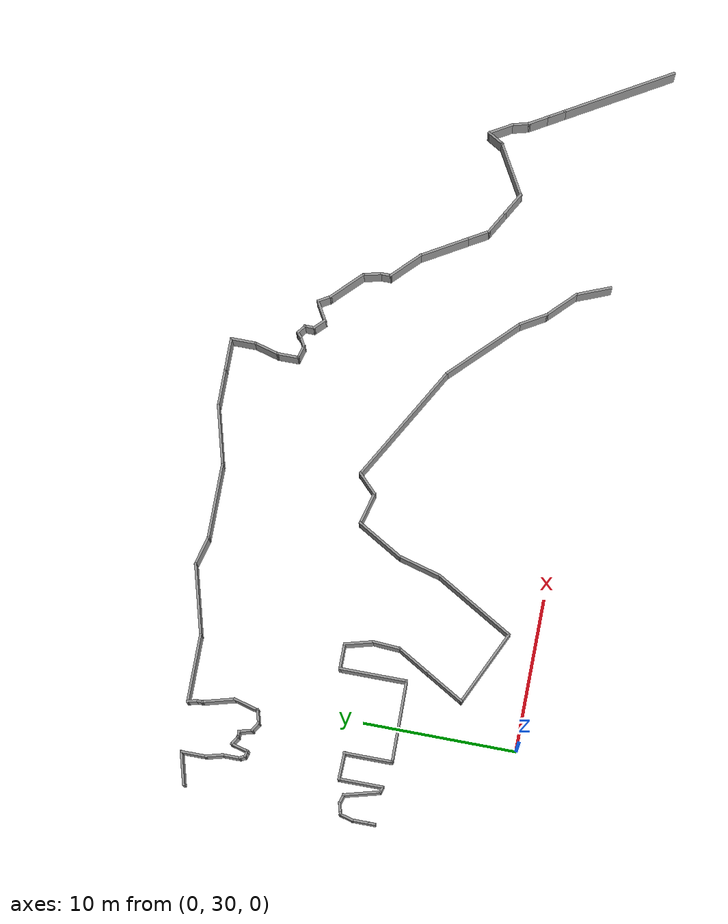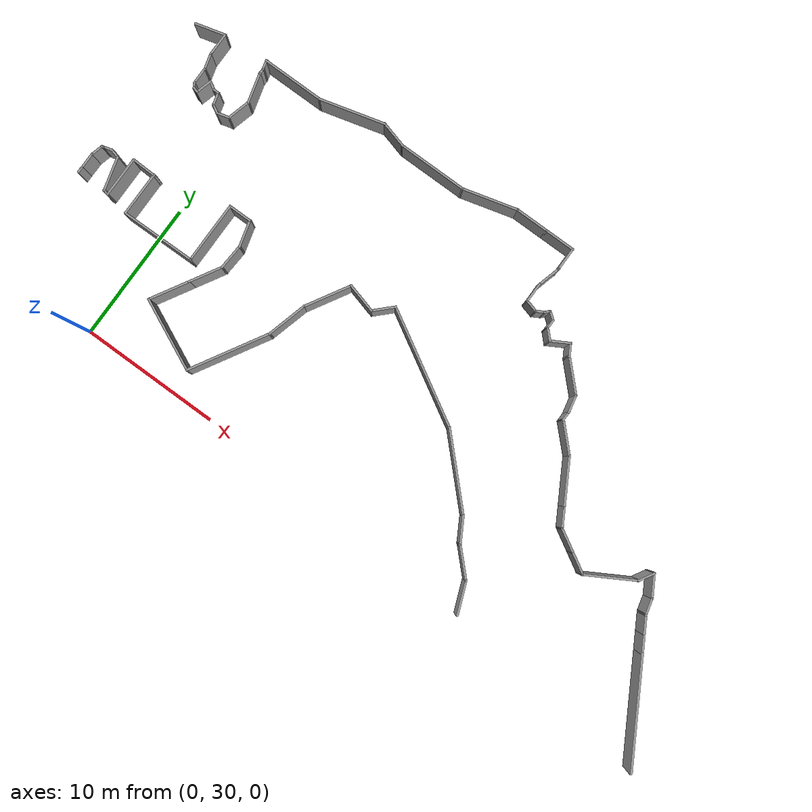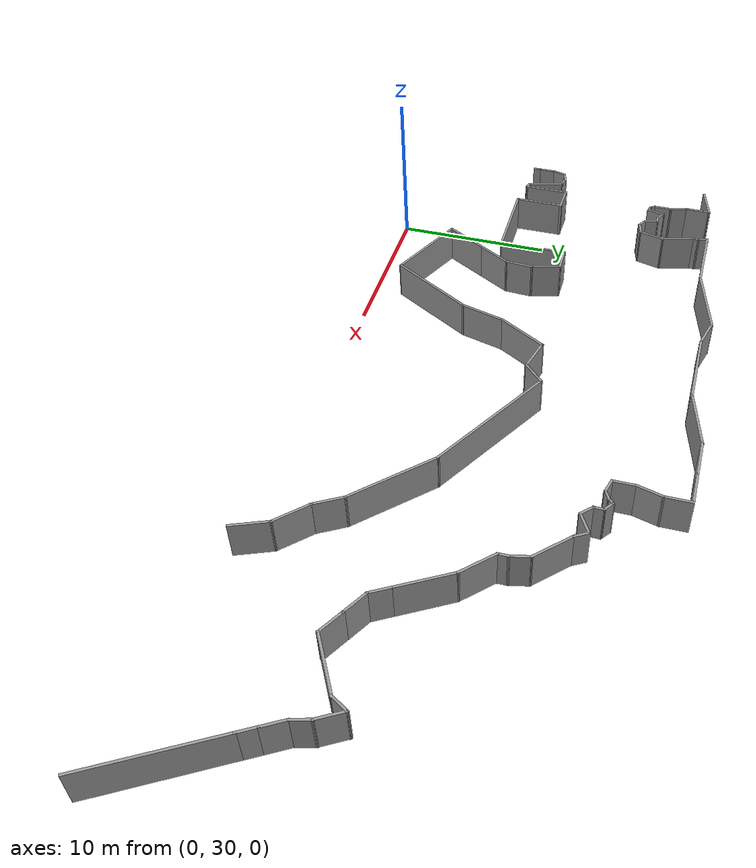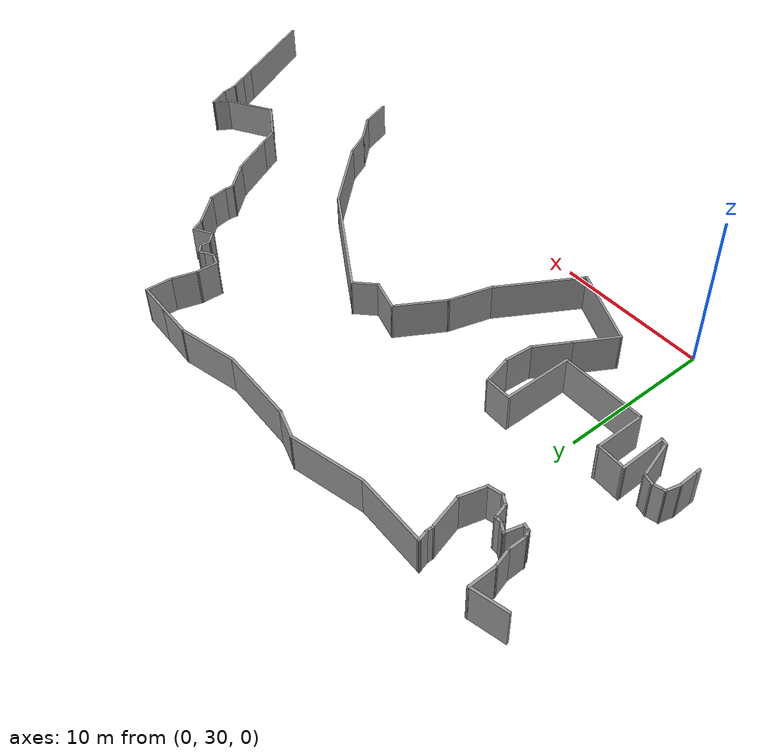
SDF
<sdf version="1.7">
 <model name="office_track1">
  <pose>2.3626 4.43866 0 0 -0 0</pose>
  <link name="Wall_231">
   <collision name="Wall_231_Collision">
    <geometry><box><size>2 0.15 2.5</size></box></geometry>
    <pose>0 0 1.25 0 -0 0</pose>
   </collision>
   <visual name="Wall_231_Visual">
    <pose>0 0 1.25 0 -0 0</pose>
    <geometry><box><size>2 0.15 2.5</size></box></geometry>
    <material>
     <script><uri>file://media/materials/scripts/gazebo.material</uri><name>Gazebo/Grey</name></script>
     <ambient>1 1 1 1</ambient>
    </material>
    <meta><layer>0</layer></meta>
   </visual>
   <pose>25.2408 29.5346 0 0 -0 -1.0472</pose>
  </link>
  <link name="Wall_232">
   <collision name="Wall_232_Collision">
    <geometry><box><size>2.5 0.15 2.5</size></box></geometry>
    <pose>0 0 1.25 0 -0 0</pose>
   </collision>
   <visual name="Wall_232_Visual">
    <pose>0 0 1.25 0 -0 0</pose>
    <geometry><box><size>2.5 0.15 2.5</size></box></geometry>
    <material>
     <script><uri>file://media/materials/scripts/gazebo.material</uri><name>Gazebo/Grey</name></script>
     <ambient>1 1 1 1</ambient>
    </material>
    <meta><layer>0</layer></meta>
   </visual>
   <pose>26.5341 27.9027 0 0 -0 -0.785398</pose>
  </link>
  <link name="Wall_233">
   <collision name="Wall_233_Collision">
    <geometry><box><size>2.40407 0.15 2.5</size></box></geometry>
    <pose>0 0 1.25 0 -0 0</pose>
   </collision>
   <visual name="Wall_233_Visual">
    <pose>0 0 1.25 0 -0 0</pose>
    <geometry><box><size>2.40407 0.15 2.5</size></box></geometry>
    <material>
     <script><uri>file://media/materials/scripts/gazebo.material</uri><name>Gazebo/Grey</name></script>
     <ambient>1 1 1 1</ambient>
    </material>
    <meta><layer>0</layer></meta>
   </visual>
   <pose>27.7843 26.0257 0 0 -0 -1.18961</pose>
  </link>
  <link name="Wall_235">
   <collision name="Wall_235_Collision">
    <geometry><box><size>8.75 0.15 2.5</size></box></geometry>
    <pose>0 0 1.25 0 -0 0</pose>
   </collision>
   <visual name="Wall_235_Visual">
    <pose>0 0 1.25 0 -0 0</pose>
    <geometry><box><size>8.75 0.15 2.5</size></box></geometry>
    <material>
     <script><uri>file://media/materials/scripts/gazebo.material</uri><name>Gazebo/Grey</name></script>
     <ambient>1 1 1 1</ambient>
    </material>
    <meta><layer>0</layer></meta>
   </visual>
   <pose>17.0277 36.5435 0 0 -0 -0.523599</pose>
  </link>
  <link name="Wall_236">
   <collision name="Wall_236_Collision">
    <geometry><box><size>5.86661 0.15 2.5</size></box></geometry>
    <pose>0 0 1.25 0 -0 0</pose>
   </collision>
   <visual name="Wall_236_Visual">
    <pose>0 0 1.25 0 -0 0</pose>
    <geometry><box><size>5.86661 0.15 2.5</size></box></geometry>
    <material>
     <script><uri>file://media/materials/scripts/gazebo.material</uri><name>Gazebo/Grey</name></script>
     <ambient>1 1 1 1</ambient>
    </material>
    <meta><layer>0</layer></meta>
   </visual>
   <pose>22.765 32.3646 0 0 -0 -0.789256</pose>
  </link>
  <link name="Wall_238">
   <collision name="Wall_238_Collision">
    <geometry><box><size>1.75 0.15 2.5</size></box></geometry>
    <pose>0 0 1.25 0 -0 0</pose>
   </collision>
   <visual name="Wall_238_Visual">
    <pose>0 0 1.25 0 -0 0</pose>
    <geometry><box><size>1.75 0.15 2.5</size></box></geometry>
    <material>
     <script><uri>file://media/materials/scripts/gazebo.material</uri><name>Gazebo/Grey</name></script>
     <ambient>1 1 1 1</ambient>
    </material>
    <meta><layer>0</layer></meta>
   </visual>
   <pose>12.7381 38.1278 0 0 -0 -2.35619</pose>
  </link>
  <link name="Wall_239">
   <collision name="Wall_239_Collision">
    <geometry><box><size>2.25 0.15 2.5</size></box></geometry>
    <pose>0 0 1.25 0 -0 0</pose>
   </collision>
   <visual name="Wall_239_Visual">
    <pose>0 0 1.25 0 -0 0</pose>
    <geometry><box><size>2.25 0.15 2.5</size></box></geometry>
    <material>
     <script><uri>file://media/materials/scripts/gazebo.material</uri><name>Gazebo/Grey</name></script>
     <ambient>1 1 1 1</ambient>
    </material>
    <meta><layer>0</layer></meta>
   </visual>
   <pose>11.1582 37.8339 0 0 -0 2.87979</pose>
  </link>
  <link name="Wall_240">
   <collision name="Wall_240_Collision">
    <geometry><box><size>3.5 0.15 2.5</size></box></geometry>
    <pose>0 0 1.25 0 -0 0</pose>
   </collision>
   <visual name="Wall_240_Visual">
    <pose>0 0 1.25 0 -0 0</pose>
    <geometry><box><size>3.5 0.15 2.5</size></box></geometry>
    <material>
     <script><uri>file://media/materials/scripts/gazebo.material</uri><name>Gazebo/Grey</name></script>
     <ambient>1 1 1 1</ambient>
    </material>
    <meta><layer>0</layer></meta>
   </visual>
   <pose>9.30651 36.6551 0 0 -0 -2.0944</pose>
  </link>
  <link name="Wall_241">
   <collision name="Wall_241_Collision">
    <geometry><box><size>3 0.15 2.5</size></box></geometry>
    <pose>0 0 1.25 0 -0 0</pose>
   </collision>
   <visual name="Wall_241_Visual">
    <pose>0 0 1.25 0 -0 0</pose>
    <geometry><box><size>3 0.15 2.5</size></box></geometry>
    <material>
     <script><uri>file://media/materials/scripts/gazebo.material</uri><name>Gazebo/Grey</name></script>
     <ambient>1 1 1 1</ambient>
    </material>
    <meta><layer>0</layer></meta>
   </visual>
   <pose>8.10019 33.828 0 0 -0 -1.8326</pose>
  </link>
  <link name="Wall_242">
   <collision name="Wall_242_Collision">
    <geometry><box><size>6 0.15 2.5</size></box></geometry>
    <pose>0 0 1.25 0 -0 0</pose>
   </collision>
   <visual name="Wall_242_Visual">
    <pose>0 0 1.25 0 -0 0</pose>
    <geometry><box><size>6 0.15 2.5</size></box></geometry>
    <material>
     <script><uri>file://media/materials/scripts/gazebo.material</uri><name>Gazebo/Grey</name></script>
     <ambient>1 1 1 1</ambient>
    </material>
    <meta><layer>0</layer></meta>
   </visual>
   <pose>6.26888 29.9185 0 0 -0 -2.0944</pose>
  </link>
  <link name="Wall_244">
   <collision name="Wall_244_Collision">
    <geometry><box><size>2.5 0.15 2.5</size></box></geometry>
    <pose>0 0 1.25 0 -0 0</pose>
   </collision>
   <visual name="Wall_244_Visual">
    <pose>0 0 1.25 0 -0 0</pose>
    <geometry><box><size>2.5 0.15 2.5</size></box></geometry>
    <material>
     <script><uri>file://media/materials/scripts/gazebo.material</uri><name>Gazebo/Grey</name></script>
     <ambient>1 1 1 1</ambient>
    </material>
    <meta><layer>0</layer></meta>
   </visual>
   <pose>2.04965 33.1007 0 0 -0 -2.0944</pose>
  </link>
  <link name="Wall_245">
   <collision name="Wall_245_Collision">
    <geometry><box><size>3 0.15 2.5</size></box></geometry>
    <pose>0 0 1.25 0 -0 0</pose>
   </collision>
   <visual name="Wall_245_Visual">
    <pose>0 0 1.25 0 -0 0</pose>
    <geometry><box><size>3 0.15 2.5</size></box></geometry>
    <material>
     <script><uri>file://media/materials/scripts/gazebo.material</uri><name>Gazebo/Grey</name></script>
     <ambient>1 1 1 1</ambient>
    </material>
    <meta><layer>0</layer></meta>
   </visual>
   <pose>0.749647 30.849 0 0 -0 -2.0944</pose>
  </link>
  <link name="Wall_246">
   <collision name="Wall_246_Collision">
    <geometry><box><size>5.41467 0.15 2.5</size></box></geometry>
    <pose>0 0 1.25 0 -0 0</pose>
   </collision>
   <visual name="Wall_246_Visual">
    <pose>0 0 1.25 0 -0 0</pose>
    <geometry><box><size>5.41467 0.15 2.5</size></box></geometry>
    <material>
     <script><uri>file://media/materials/scripts/gazebo.material</uri><name>Gazebo/Grey</name></script>
     <ambient>1 1 1 1</ambient>
    </material>
    <meta><layer>0</layer></meta>
   </visual>
   <pose>2.42176 28.5001 0 0 -0 -0.43731</pose>
  </link>
  <link name="Wall_248">
   <collision name="Wall_248_Collision">
    <geometry><box><size>1.75 0.15 2.5</size></box></geometry>
    <pose>0 0 1.25 0 -0 0</pose>
   </collision>
   <visual name="Wall_248_Visual">
    <pose>0 0 1.25 0 -0 0</pose>
    <geometry><box><size>1.75 0.15 2.5</size></box></geometry>
    <material>
     <script><uri>file://media/materials/scripts/gazebo.material</uri><name>Gazebo/Grey</name></script>
     <ambient>1 1 1 1</ambient>
    </material>
    <meta><layer>0</layer></meta>
   </visual>
   <pose>1.46873 37.6561 0 0 -0 0</pose>
  </link>
  <link name="Wall_249">
   <collision name="Wall_249_Collision">
    <geometry><box><size>2 0.15 2.5</size></box></geometry>
    <pose>0 0 1.25 0 -0 0</pose>
   </collision>
   <visual name="Wall_249_Visual">
    <pose>0 0 1.25 0 -0 0</pose>
    <geometry><box><size>2 0.15 2.5</size></box></geometry>
    <material>
     <script><uri>file://media/materials/scripts/gazebo.material</uri><name>Gazebo/Grey</name></script>
     <ambient>1 1 1 1</ambient>
    </material>
    <meta><layer>0</layer></meta>
   </visual>
   <pose>2.50814 36.7626 0 0 -0 -1.309</pose>
  </link>
  <link name="Wall_250">
   <collision name="Wall_250_Collision">
    <geometry><box><size>1.90434 0.15 2.5</size></box></geometry>
    <pose>0 0 1.25 0 -0 0</pose>
   </collision>
   <visual name="Wall_250_Visual">
    <pose>0 0 1.25 0 -0 0</pose>
    <geometry><box><size>1.90434 0.15 2.5</size></box></geometry>
    <material>
     <script><uri>file://media/materials/scripts/gazebo.material</uri><name>Gazebo/Grey</name></script>
     <ambient>1 1 1 1</ambient>
    </material>
    <meta><layer>0</layer></meta>
   </visual>
   <pose>2.69235 34.9937 0 0 -0 -1.63377</pose>
  </link>
  <link name="Wall_252">
   <collision name="Wall_252_Collision">
    <geometry><box><size>4.5 0.15 2.5</size></box></geometry>
    <pose>0 0 1.25 0 -0 0</pose>
   </collision>
   <visual name="Wall_252_Visual">
    <pose>0 0 1.25 0 -0 0</pose>
    <geometry><box><size>4.5 0.15 2.5</size></box></geometry>
    <material>
     <script><uri>file://media/materials/scripts/gazebo.material</uri><name>Gazebo/Grey</name></script>
     <ambient>1 1 1 1</ambient>
    </material>
    <meta><layer>0</layer></meta>
   </visual>
   <pose>0.668732 35.4811 0 0 -0 -1.5708</pose>
  </link>
  <link name="Wall_253">
   <collision name="Wall_253_Collision">
    <geometry><box><size>5.38327 0.15 2.5</size></box></geometry>
    <pose>0 0 1.25 0 -0 0</pose>
   </collision>
   <visual name="Wall_253_Visual">
    <pose>0 0 1.25 0 -0 0</pose>
    <geometry><box><size>5.38327 0.15 2.5</size></box></geometry>
    <material>
     <script><uri>file://media/materials/scripts/gazebo.material</uri><name>Gazebo/Grey</name></script>
     <ambient>1 1 1 1</ambient>
    </material>
    <meta><layer>0</layer></meta>
   </visual>
   <pose>-1.94777 33.2795 0 0 -0 -3.13143</pose>
  </link>
  <link name="Wall_254">
   <collision name="Wall_254_Collision">
    <geometry><box><size>3.25 0.15 2.5</size></box></geometry>
    <pose>0 0 1.25 0 -0 0</pose>
   </collision>
   <visual name="Wall_254_Visual">
    <pose>0 0 1.25 0 -0 0</pose>
    <geometry><box><size>3.25 0.15 2.5</size></box></geometry>
    <material>
     <script><uri>file://media/materials/scripts/gazebo.material</uri><name>Gazebo/Grey</name></script>
     <ambient>1 1 1 1</ambient>
    </material>
    <meta><layer>0</layer></meta>
   </visual>
   <pose>-4.59087 34.8295 0 0 -0 1.5708</pose>
  </link>
  <link name="Wall_255">
   <collision name="Wall_255_Collision">
    <geometry><box><size>1.86782 0.15 2.5</size></box></geometry>
    <pose>0 0 1.25 0 -0 0</pose>
   </collision>
   <visual name="Wall_255_Visual">
    <pose>0 0 1.25 0 -0 0</pose>
    <geometry><box><size>1.86782 0.15 2.5</size></box></geometry>
    <material>
     <script><uri>file://media/materials/scripts/gazebo.material</uri><name>Gazebo/Grey</name></script>
     <ambient>1 1 1 1</ambient>
    </material>
    <meta><layer>0</layer></meta>
   </visual>
   <pose>-5.42277 36.3795 0 0 -0 3.11062</pose>
  </link>
  <link name="Wall_256">
   <collision name="Wall_256_Collision">
    <geometry><box><size>3 0.15 2.5</size></box></geometry>
    <pose>0 0 1.25 0 -0 0</pose>
   </collision>
   <visual name="Wall_256_Visual">
    <pose>0 0 1.25 0 -0 0</pose>
    <geometry><box><size>3 0.15 2.5</size></box></geometry>
    <material>
     <script><uri>file://media/materials/scripts/gazebo.material</uri><name>Gazebo/Grey</name></script>
     <ambient>1 1 1 1</ambient>
    </material>
    <meta><layer>0</layer></meta>
   </visual>
   <pose>-6.28127 34.9811 0 0 -0 -1.5708</pose>
  </link>
  <link name="Wall_257">
   <collision name="Wall_257_Collision">
    <geometry><box><size>0.5 0.15 2.5</size></box></geometry>
    <pose>0 0 1.25 0 -0 0</pose>
   </collision>
   <visual name="Wall_257_Visual">
    <pose>0 0 1.25 0 -0 0</pose>
    <geometry><box><size>0.5 0.15 2.5</size></box></geometry>
    <material>
     <script><uri>file://media/materials/scripts/gazebo.material</uri><name>Gazebo/Grey</name></script>
     <ambient>1 1 1 1</ambient>
    </material>
    <meta><layer>0</layer></meta>
   </visual>
   <pose>-6.45031 33.6014 0 0 -0 2.87979</pose>
  </link>
  <link name="Wall_258">
   <collision name="Wall_258_Collision">
    <geometry><box><size>2.5 0.15 2.5</size></box></geometry>
    <pose>0 0 1.25 0 -0 0</pose>
   </collision>
   <visual name="Wall_258_Visual">
    <pose>0 0 1.25 0 -0 0</pose>
    <geometry><box><size>2.5 0.15 2.5</size></box></geometry>
    <material>
     <script><uri>file://media/materials/scripts/gazebo.material</uri><name>Gazebo/Grey</name></script>
     <ambient>1 1 1 1</ambient>
    </material>
    <meta><layer>0</layer></meta>
   </visual>
   <pose>-6.92345 34.7817 0 0 -0 1.8326</pose>
  </link>
  <link name="Wall_259">
   <collision name="Wall_259_Collision">
    <geometry><box><size>0.75 0.15 2.5</size></box></geometry>
    <pose>0 0 1.25 0 -0 0</pose>
   </collision>
   <visual name="Wall_259_Visual">
    <pose>0 0 1.25 0 -0 0</pose>
    <geometry><box><size>0.75 0.15 2.5</size></box></geometry>
    <material>
     <script><uri>file://media/materials/scripts/gazebo.material</uri><name>Gazebo/Grey</name></script>
     <ambient>1 1 1 1</ambient>
    </material>
    <meta><layer>0</layer></meta>
   </visual>
   <pose>-7.51734 35.9943 0 0 -0 2.87979</pose>
  </link>
  <link name="Wall_260">
   <collision name="Wall_260_Collision">
    <geometry><box><size>0.75 0.15 2.5</size></box></geometry>
    <pose>0 0 1.25 0 -0 0</pose>
   </collision>
   <visual name="Wall_260_Visual">
    <pose>0 0 1.25 0 -0 0</pose>
    <geometry><box><size>0.75 0.15 2.5</size></box></geometry>
    <material>
     <script><uri>file://media/materials/scripts/gazebo.material</uri><name>Gazebo/Grey</name></script>
     <ambient>1 1 1 1</ambient>
    </material>
    <meta><layer>0</layer></meta>
   </visual>
   <pose>-8.0969 35.9943 0 0 -0 -2.87979</pose>
  </link>
  <link name="Wall_261">
   <collision name="Wall_261_Collision">
    <geometry><box><size>0.25 0.15 2.5</size></box></geometry>
    <pose>0 0 1.25 0 -0 0</pose>
   </collision>
   <visual name="Wall_261_Visual">
    <pose>0 0 1.25 0 -0 0</pose>
    <geometry><box><size>0.25 0.15 2.5</size></box></geometry>
    <material>
     <script><uri>file://media/materials/scripts/gazebo.material</uri><name>Gazebo/Grey</name></script>
     <ambient>1 1 1 1</ambient>
    </material>
    <meta><layer>0</layer></meta>
   </visual>
   <pose>-8.43497 35.9037 0 0 -0 -2.87979</pose>
  </link>
  <link name="Wall_262">
   <collision name="Wall_262_Collision">
    <geometry><box><size>1 0.15 2.5</size></box></geometry>
    <pose>0 0 1.25 0 -0 0</pose>
   </collision>
   <visual name="Wall_262_Visual">
    <pose>0 0 1.25 0 -0 0</pose>
    <geometry><box><size>1 0.15 2.5</size></box></geometry>
    <material>
     <script><uri>file://media/materials/scripts/gazebo.material</uri><name>Gazebo/Grey</name></script>
     <ambient>1 1 1 1</ambient>
    </material>
    <meta><layer>0</layer></meta>
   </visual>
   <pose>-8.59327 35.4802 0 0 -0 -1.8326</pose>
  </link>
  <link name="Wall_263">
   <collision name="Wall_263_Collision">
    <geometry><box><size>1.25 0.15 2.5</size></box></geometry>
    <pose>0 0 1.25 0 -0 0</pose>
   </collision>
   <visual name="Wall_263_Visual">
    <pose>0 0 1.25 0 -0 0</pose>
    <geometry><box><size>1.25 0.15 2.5</size></box></geometry>
    <material>
     <script><uri>file://media/materials/scripts/gazebo.material</uri><name>Gazebo/Grey</name></script>
     <ambient>1 1 1 1</ambient>
    </material>
    <meta><layer>0</layer></meta>
   </visual>
   <pose>-8.70327 34.5197 0 0 -0 -1.5708</pose>
  </link>
  <link name="Wall_264">
   <collision name="Wall_264_Collision">
    <geometry><box><size>0.5 0.15 2.5</size></box></geometry>
    <pose>0 0 1.25 0 -0 0</pose>
   </collision>
   <visual name="Wall_264_Visual">
    <pose>0 0 1.25 0 -0 0</pose>
    <geometry><box><size>0.5 0.15 2.5</size></box></geometry>
    <material>
     <script><uri>file://media/materials/scripts/gazebo.material</uri><name>Gazebo/Grey</name></script>
     <ambient>1 1 1 1</ambient>
    </material>
    <meta><layer>0</layer></meta>
   </visual>
   <pose>-8.70327 33.7947 0 0 -0 -1.5708</pose>
  </link>
  <link name="Wall_301">
   <collision name="Wall_301_Collision">
    <geometry><box><size>1.5 0.15 2.5</size></box></geometry>
    <pose>0 0 1.25 0 -0 0</pose>
   </collision>
   <visual name="Wall_301_Visual">
    <pose>0 0 1.25 0 -0 0</pose>
    <geometry><box><size>1.5 0.15 2.5</size></box></geometry>
    <material>
     <script><uri>file://media/materials/scripts/gazebo.material</uri><name>Gazebo/Grey</name></script>
     <ambient>1 1 1 1</ambient>
    </material>
    <meta><layer>0</layer></meta>
   </visual>
   <pose>30.0571 34.013 0 0 -0 -1.0472</pose>
  </link>
  <link name="Wall_302">
   <collision name="Wall_302_Collision">
    <geometry><box><size>1.75 0.15 2.5</size></box></geometry>
    <pose>0 0 1.25 0 -0 0</pose>
   </collision>
   <visual name="Wall_302_Visual">
    <pose>0 0 1.25 0 -0 0</pose>
    <geometry><box><size>1.75 0.15 2.5</size></box></geometry>
    <material>
     <script><uri>file://media/materials/scripts/gazebo.material</uri><name>Gazebo/Grey</name></script>
     <ambient>1 1 1 1</ambient>
    </material>
    <meta><layer>0</layer></meta>
   </visual>
   <pose>31.0874 33.0285 0 0 -0 -0.523599</pose>
  </link>
  <link name="Wall_303">
   <collision name="Wall_303_Collision">
    <geometry><box><size>1.75 0.15 2.5</size></box></geometry>
    <pose>0 0 1.25 0 -0 0</pose>
   </collision>
   <visual name="Wall_303_Visual">
    <pose>0 0 1.25 0 -0 0</pose>
    <geometry><box><size>1.75 0.15 2.5</size></box></geometry>
    <material>
     <script><uri>file://media/materials/scripts/gazebo.material</uri><name>Gazebo/Grey</name></script>
     <ambient>1 1 1 1</ambient>
    </material>
    <meta><layer>0</layer></meta>
   </visual>
   <pose>32.4731 32.2285 0 0 -0 -0.523599</pose>
  </link>
  <link name="Wall_304">
   <collision name="Wall_304_Collision">
    <geometry><box><size>3.75 0.15 2.5</size></box></geometry>
    <pose>0 0 1.25 0 -0 0</pose>
   </collision>
   <visual name="Wall_304_Visual">
    <pose>0 0 1.25 0 -0 0</pose>
    <geometry><box><size>3.75 0.15 2.5</size></box></geometry>
    <material>
     <script><uri>file://media/materials/scripts/gazebo.material</uri><name>Gazebo/Grey</name></script>
     <ambient>1 1 1 1</ambient>
    </material>
    <meta><layer>0</layer></meta>
   </visual>
   <pose>34.7247 32.7285 0 0 -0 0.523599</pose>
  </link>
  <link name="Wall_305">
   <collision name="Wall_305_Collision">
    <geometry><box><size>1.25 0.15 2.5</size></box></geometry>
    <pose>0 0 1.25 0 -0 0</pose>
   </collision>
   <visual name="Wall_305_Visual">
    <pose>0 0 1.25 0 -0 0</pose>
    <geometry><box><size>1.25 0.15 2.5</size></box></geometry>
    <material>
     <script><uri>file://media/materials/scripts/gazebo.material</uri><name>Gazebo/Grey</name></script>
     <ambient>1 1 1 1</ambient>
    </material>
    <meta><layer>0</layer></meta>
   </visual>
   <pose>36.5586 34.1048 0 0 -0 1.0472</pose>
  </link>
  <link name="Wall_306">
   <collision name="Wall_306_Collision">
    <geometry><box><size>1.75 0.15 2.5</size></box></geometry>
    <pose>0 0 1.25 0 -0 0</pose>
   </collision>
   <visual name="Wall_306_Visual">
    <pose>0 0 1.25 0 -0 0</pose>
    <geometry><box><size>1.75 0.15 2.5</size></box></geometry>
    <material>
     <script><uri>file://media/materials/scripts/gazebo.material</uri><name>Gazebo/Grey</name></script>
     <ambient>1 1 1 1</ambient>
    </material>
    <meta><layer>0</layer></meta>
   </visual>
   <pose>37.2336 33.8883 0 0 -0 -1.0472</pose>
  </link>
  <link name="Wall_307">
   <collision name="Wall_307_Collision">
    <geometry><box><size>1.25 0.15 2.5</size></box></geometry>
    <pose>0 0 1.25 0 -0 0</pose>
   </collision>
   <visual name="Wall_307_Visual">
    <pose>0 0 1.25 0 -0 0</pose>
    <geometry><box><size>1.25 0.15 2.5</size></box></geometry>
    <material>
     <script><uri>file://media/materials/scripts/gazebo.material</uri><name>Gazebo/Grey</name></script>
     <ambient>1 1 1 1</ambient>
    </material>
    <meta><layer>0</layer></meta>
   </visual>
   <pose>37.7759 32.6642 0 0 -0 -1.309</pose>
  </link>
  <link name="Wall_308">
   <collision name="Wall_308_Collision">
    <geometry><box><size>1.5 0.15 2.5</size></box></geometry>
    <pose>0 0 1.25 0 -0 0</pose>
   </collision>
   <visual name="Wall_308_Visual">
    <pose>0 0 1.25 0 -0 0</pose>
    <geometry><box><size>1.5 0.15 2.5</size></box></geometry>
    <material>
     <script><uri>file://media/materials/scripts/gazebo.material</uri><name>Gazebo/Grey</name></script>
     <ambient>1 1 1 1</ambient>
    </material>
    <meta><layer>0</layer></meta>
   </visual>
   <pose>38.2558 31.5484 0 0 -0 -1.0472</pose>
  </link>
  <link name="Wall_309">
   <collision name="Wall_309_Collision">
    <geometry><box><size>1.25 0.15 2.5</size></box></geometry>
    <pose>0 0 1.25 0 -0 0</pose>
   </collision>
   <visual name="Wall_309_Visual">
    <pose>0 0 1.25 0 -0 0</pose>
    <geometry><box><size>1.25 0.15 2.5</size></box></geometry>
    <material>
     <script><uri>file://media/materials/scripts/gazebo.material</uri><name>Gazebo/Grey</name></script>
     <ambient>1 1 1 1</ambient>
    </material>
    <meta><layer>0</layer></meta>
   </visual>
   <pose>38.8683 30.4875 0 0 -0 -1.0472</pose>
  </link>
  <link name="Wall_311">
   <collision name="Wall_311_Collision">
    <geometry><box><size>3.5 0.15 2.5</size></box></geometry>
    <pose>0 0 1.25 0 -0 0</pose>
   </collision>
   <visual name="Wall_311_Visual">
    <pose>0 0 1.25 0 -0 0</pose>
    <geometry><box><size>3.5 0.15 2.5</size></box></geometry>
    <material>
     <script><uri>file://media/materials/scripts/gazebo.material</uri><name>Gazebo/Grey</name></script>
     <ambient>1 1 1 1</ambient>
    </material>
    <meta><layer>0</layer></meta>
   </visual>
   <pose>28.8821 36.0482 0 0 -0 2.0944</pose>
  </link>
  <link name="Wall_312">
   <collision name="Wall_312_Collision">
    <geometry><box><size>2.5 0.15 2.5</size></box></geometry>
    <pose>0 0 1.25 0 -0 0</pose>
   </collision>
   <visual name="Wall_312_Visual">
    <pose>0 0 1.25 0 -0 0</pose>
    <geometry><box><size>2.5 0.15 2.5</size></box></geometry>
    <material>
     <script><uri>file://media/materials/scripts/gazebo.material</uri><name>Gazebo/Grey</name></script>
     <ambient>1 1 1 1</ambient>
    </material>
    <meta><layer>0</layer></meta>
   </visual>
   <pose>27.2137 38.3296 0 0 -0 2.35619</pose>
  </link>
  <link name="Wall_313">
   <collision name="Wall_313_Collision">
    <geometry><box><size>0.75 0.15 2.5</size></box></geometry>
    <pose>0 0 1.25 0 -0 0</pose>
   </collision>
   <visual name="Wall_313_Visual">
    <pose>0 0 1.25 0 -0 0</pose>
    <geometry><box><size>0.75 0.15 2.5</size></box></geometry>
    <material>
     <script><uri>file://media/materials/scripts/gazebo.material</uri><name>Gazebo/Grey</name></script>
     <ambient>1 1 1 1</ambient>
    </material>
    <meta><layer>0</layer></meta>
   </visual>
   <pose>26.3829 39.4605 0 0 -0 1.5708</pose>
  </link>
  <link name="Wall_315">
   <collision name="Wall_315_Collision">
    <geometry><box><size>7.75 0.15 2.5</size></box></geometry>
    <pose>0 0 1.25 0 -0 0</pose>
   </collision>
   <visual name="Wall_315_Visual">
    <pose>0 0 1.25 0 -0 0</pose>
    <geometry><box><size>7.75 0.15 2.5</size></box></geometry>
    <material>
     <script><uri>file://media/materials/scripts/gazebo.material</uri><name>Gazebo/Grey</name></script>
     <ambient>1 1 1 1</ambient>
    </material>
    <meta><layer>0</layer></meta>
   </visual>
   <pose>41.0433 26.7203 0 0 -0 -1.0472</pose>
  </link>
  <link name="Wall_664">
   <collision name="Wall_664_Collision">
    <geometry><box><size>2.25 0.15 2.5</size></box></geometry>
    <pose>0 0 1.25 0 -0 0</pose>
   </collision>
   <visual name="Wall_664_Visual">
    <pose>0 0 1.25 0 -0 0</pose>
    <geometry><box><size>2.25 0.15 2.5</size></box></geometry>
    <material>
     <script><uri>file://media/materials/scripts/gazebo.material</uri><name>Gazebo/Grey</name></script>
     <ambient>1 1 1 1</ambient>
    </material>
    <meta><layer>0</layer></meta>
   </visual>
   <pose>-7.43792 46.3689 0 0 -0 0.261799</pose>
  </link>
  <link name="Wall_665">
   <collision name="Wall_665_Collision">
    <geometry><box><size>1.75 0.15 2.5</size></box></geometry>
    <pose>0 0 1.25 0 -0 0</pose>
   </collision>
   <visual name="Wall_665_Visual">
    <pose>0 0 1.25 0 -0 0</pose>
    <geometry><box><size>1.75 0.15 2.5</size></box></geometry>
    <material>
     <script><uri>file://media/materials/scripts/gazebo.material</uri><name>Gazebo/Grey</name></script>
     <ambient>1 1 1 1</ambient>
    </material>
    <meta><layer>0</layer></meta>
   </visual>
   <pose>-6.4237 45.8407 0 0 -0 -1.5708</pose>
  </link>
  <link name="Wall_666">
   <collision name="Wall_666_Collision">
    <geometry><box><size>1.25 0.15 2.5</size></box></geometry>
    <pose>0 0 1.25 0 -0 0</pose>
   </collision>
   <visual name="Wall_666_Visual">
    <pose>0 0 1.25 0 -0 0</pose>
    <geometry><box><size>1.25 0.15 2.5</size></box></geometry>
    <material>
     <script><uri>file://media/materials/scripts/gazebo.material</uri><name>Gazebo/Grey</name></script>
     <ambient>1 1 1 1</ambient>
    </material>
    <meta><layer>0</layer></meta>
   </visual>
   <pose>-6.28135 44.5094 0 0 -0 -1.309</pose>
  </link>
  <link name="Wall_667">
   <collision name="Wall_667_Collision">
    <geometry><box><size>1.25 0.15 2.5</size></box></geometry>
    <pose>0 0 1.25 0 -0 0</pose>
   </collision>
   <visual name="Wall_667_Visual">
    <pose>0 0 1.25 0 -0 0</pose>
    <geometry><box><size>1.25 0.15 2.5</size></box></geometry>
    <material>
     <script><uri>file://media/materials/scripts/gazebo.material</uri><name>Gazebo/Grey</name></script>
     <ambient>1 1 1 1</ambient>
    </material>
    <meta><layer>0</layer></meta>
   </visual>
   <pose>-6.139 43.4282 0 0 -0 -1.5708</pose>
  </link>
  <link name="Wall_668">
   <collision name="Wall_668_Collision">
    <geometry><box><size>0.5 0.15 2.5</size></box></geometry>
    <pose>0 0 1.25 0 -0 0</pose>
   </collision>
   <visual name="Wall_668_Visual">
    <pose>0 0 1.25 0 -0 0</pose>
    <geometry><box><size>0.5 0.15 2.5</size></box></geometry>
    <material>
     <script><uri>file://media/materials/scripts/gazebo.material</uri><name>Gazebo/Grey</name></script>
     <ambient>1 1 1 1</ambient>
    </material>
    <meta><layer>0</layer></meta>
   </visual>
   <pose>-6.0515 42.7266 0 0 -0 -1.0472</pose>
  </link>
  <link name="Wall_669">
   <collision name="Wall_669_Collision">
    <geometry><box><size>0.5 0.15 2.5</size></box></geometry>
    <pose>0 0 1.25 0 -0 0</pose>
   </collision>
   <visual name="Wall_669_Visual">
    <pose>0 0 1.25 0 -0 0</pose>
    <geometry><box><size>0.5 0.15 2.5</size></box></geometry>
    <material>
     <script><uri>file://media/materials/scripts/gazebo.material</uri><name>Gazebo/Grey</name></script>
     <ambient>1 1 1 1</ambient>
    </material>
    <meta><layer>0</layer></meta>
   </visual>
   <pose>-5.79496 42.5298 0 0 -0 -0.261799</pose>
  </link>
  <link name="Wall_670">
   <collision name="Wall_670_Collision">
    <geometry><box><size>1.25 0.15 2.5</size></box></geometry>
    <pose>0 0 1.25 0 -0 0</pose>
   </collision>
   <visual name="Wall_670_Visual">
    <pose>0 0 1.25 0 -0 0</pose>
    <geometry><box><size>1.25 0.15 2.5</size></box></geometry>
    <material>
     <script><uri>file://media/materials/scripts/gazebo.material</uri><name>Gazebo/Grey</name></script>
     <ambient>1 1 1 1</ambient>
    </material>
    <meta><layer>0</layer></meta>
   </visual>
   <pose>-5.48357 43.0157 0 0 -0 1.309</pose>
  </link>
  <link name="Wall_671">
   <collision name="Wall_671_Collision">
    <geometry><box><size>0.75 0.15 2.5</size></box></geometry>
    <pose>0 0 1.25 0 -0 0</pose>
   </collision>
   <visual name="Wall_671_Visual">
    <pose>0 0 1.25 0 -0 0</pose>
    <geometry><box><size>0.75 0.15 2.5</size></box></geometry>
    <material>
     <script><uri>file://media/materials/scripts/gazebo.material</uri><name>Gazebo/Grey</name></script>
     <ambient>1 1 1 1</ambient>
    </material>
    <meta><layer>0</layer></meta>
   </visual>
   <pose>-5.08141 43.397 0 0 -0 -0.523599</pose>
  </link>
  <link name="Wall_672">
   <collision name="Wall_672_Collision">
    <geometry><box><size>0.5 0.15 2.5</size></box></geometry>
    <pose>0 0 1.25 0 -0 0</pose>
   </collision>
   <visual name="Wall_672_Visual">
    <pose>0 0 1.25 0 -0 0</pose>
    <geometry><box><size>0.5 0.15 2.5</size></box></geometry>
    <material>
     <script><uri>file://media/materials/scripts/gazebo.material</uri><name>Gazebo/Grey</name></script>
     <ambient>1 1 1 1</ambient>
    </material>
    <meta><layer>0</layer></meta>
   </visual>
   <pose>-4.64661 43.247 0 0 -0 0</pose>
  </link>
  <link name="Wall_673">
   <collision name="Wall_673_Collision">
    <geometry><box><size>1 0.15 2.5</size></box></geometry>
    <pose>0 0 1.25 0 -0 0</pose>
   </collision>
   <visual name="Wall_673_Visual">
    <pose>0 0 1.25 0 -0 0</pose>
    <geometry><box><size>1 0.15 2.5</size></box></geometry>
    <material>
     <script><uri>file://media/materials/scripts/gazebo.material</uri><name>Gazebo/Grey</name></script>
     <ambient>1 1 1 1</ambient>
    </material>
    <meta><layer>0</layer></meta>
   </visual>
   <pose>-4.36161 42.8365 0 0 -0 -1.309</pose>
  </link>
  <link name="Wall_674">
   <collision name="Wall_674_Collision">
    <geometry><box><size>0.75 0.15 2.5</size></box></geometry>
    <pose>0 0 1.25 0 -0 0</pose>
   </collision>
   <visual name="Wall_674_Visual">
    <pose>0 0 1.25 0 -0 0</pose>
    <geometry><box><size>0.75 0.15 2.5</size></box></geometry>
    <material>
     <script><uri>file://media/materials/scripts/gazebo.material</uri><name>Gazebo/Grey</name></script>
     <ambient>1 1 1 1</ambient>
    </material>
    <meta><layer>0</layer></meta>
   </visual>
   <pose>-3.9918 42.2759 0 0 -0 -0.523599</pose>
  </link>
  <link name="Wall_675">
   <collision name="Wall_675_Collision">
    <geometry><box><size>1 0.15 2.5</size></box></geometry>
    <pose>0 0 1.25 0 -0 0</pose>
   </collision>
   <visual name="Wall_675_Visual">
    <pose>0 0 1.25 0 -0 0</pose>
    <geometry><box><size>1 0.15 2.5</size></box></geometry>
    <material>
     <script><uri>file://media/materials/scripts/gazebo.material</uri><name>Gazebo/Grey</name></script>
     <ambient>1 1 1 1</ambient>
    </material>
    <meta><layer>0</layer></meta>
   </visual>
   <pose>-3.32148 42.2359 0 0 -0 0.261799</pose>
  </link>
  <link name="Wall_676">
   <collision name="Wall_676_Collision">
    <geometry><box><size>1.75 0.15 2.5</size></box></geometry>
    <pose>0 0 1.25 0 -0 0</pose>
   </collision>
   <visual name="Wall_676_Visual">
    <pose>0 0 1.25 0 -0 0</pose>
    <geometry><box><size>1.75 0.15 2.5</size></box></geometry>
    <material>
     <script><uri>file://media/materials/scripts/gazebo.material</uri><name>Gazebo/Grey</name></script>
     <ambient>1 1 1 1</ambient>
    </material>
    <meta><layer>0</layer></meta>
   </visual>
   <pose>-2.7039 43.1187 0 0 -0 1.309</pose>
  </link>
  <link name="Wall_677">
   <collision name="Wall_677_Collision">
    <geometry><box><size>2.25 0.15 2.5</size></box></geometry>
    <pose>0 0 1.25 0 -0 0</pose>
   </collision>
   <visual name="Wall_677_Visual">
    <pose>0 0 1.25 0 -0 0</pose>
    <geometry><box><size>2.25 0.15 2.5</size></box></geometry>
    <material>
     <script><uri>file://media/materials/scripts/gazebo.material</uri><name>Gazebo/Grey</name></script>
     <ambient>1 1 1 1</ambient>
    </material>
    <meta><layer>0</layer></meta>
   </visual>
   <pose>-2.76861 44.9056 0 0 -0 1.8326</pose>
  </link>
  <link name="Wall_678">
   <collision name="Wall_678_Collision">
    <geometry><box><size>0.5 0.15 2.5</size></box></geometry>
    <pose>0 0 1.25 0 -0 0</pose>
   </collision>
   <visual name="Wall_678_Visual">
    <pose>0 0 1.25 0 -0 0</pose>
    <geometry><box><size>0.5 0.15 2.5</size></box></geometry>
    <material>
     <script><uri>file://media/materials/scripts/gazebo.material</uri><name>Gazebo/Grey</name></script>
     <ambient>1 1 1 1</ambient>
    </material>
    <meta><layer>0</layer></meta>
   </visual>
   <pose>-3.04037 46.0949 0 0 -0 1.5708</pose>
  </link>
  <link name="Wall_679">
   <collision name="Wall_679_Collision">
    <geometry><box><size>0.75 0.15 2.5</size></box></geometry>
    <pose>0 0 1.25 0 -0 0</pose>
   </collision>
   <visual name="Wall_679_Visual">
    <pose>0 0 1.25 0 -0 0</pose>
    <geometry><box><size>0.75 0.15 2.5</size></box></geometry>
    <material>
     <script><uri>file://media/materials/scripts/gazebo.material</uri><name>Gazebo/Grey</name></script>
     <ambient>1 1 1 1</ambient>
    </material>
    <meta><layer>0</layer></meta>
   </visual>
   <pose>-3.11801 46.5596 0 0 -0 1.8326</pose>
  </link>
  <link name="Wall_681">
   <collision name="Wall_681_Collision">
    <geometry><box><size>4.5 0.15 2.5</size></box></geometry>
    <pose>0 0 1.25 0 -0 0</pose>
   </collision>
   <visual name="Wall_681_Visual">
    <pose>0 0 1.25 0 -0 0</pose>
    <geometry><box><size>4.5 0.15 2.5</size></box></geometry>
    <material>
     <script><uri>file://media/materials/scripts/gazebo.material</uri><name>Gazebo/Grey</name></script>
     <ambient>1 1 1 1</ambient>
    </material>
    <meta><layer>0</layer></meta>
   </visual>
   <pose>-1.02066 46.8494 0 0 -0 0</pose>
  </link>
  <link name="Wall_682">
   <collision name="Wall_682_Collision">
    <geometry><box><size>4.75 0.15 2.5</size></box></geometry>
    <pose>0 0 1.25 0 -0 0</pose>
   </collision>
   <visual name="Wall_682_Visual">
    <pose>0 0 1.25 0 -0 0</pose>
    <geometry><box><size>4.75 0.15 2.5</size></box></geometry>
    <material>
     <script><uri>file://media/materials/scripts/gazebo.material</uri><name>Gazebo/Grey</name></script>
     <ambient>1 1 1 1</ambient>
    </material>
    <meta><layer>0</layer></meta>
   </visual>
   <pose>3.37597 47.4447 0 0 -0 0.261799</pose>
  </link>
  <link name="Wall_683">
   <collision name="Wall_683_Collision">
    <geometry><box><size>2 0.15 2.5</size></box></geometry>
    <pose>0 0 1.25 0 -0 0</pose>
   </collision>
   <visual name="Wall_683_Visual">
    <pose>0 0 1.25 0 -0 0</pose>
    <geometry><box><size>2 0.15 2.5</size></box></geometry>
    <material>
     <script><uri>file://media/materials/scripts/gazebo.material</uri><name>Gazebo/Grey</name></script>
     <ambient>1 1 1 1</ambient>
    </material>
    <meta><layer>0</layer></meta>
   </visual>
   <pose>6.49108 47.8006 0 0 -0 -0.261799</pose>
  </link>
  <link name="Wall_684">
   <collision name="Wall_684_Collision">
    <geometry><box><size>5 0.15 2.5</size></box></geometry>
    <pose>0 0 1.25 0 -0 0</pose>
   </collision>
   <visual name="Wall_684_Visual">
    <pose>0 0 1.25 0 -0 0</pose>
    <geometry><box><size>5 0.15 2.5</size></box></geometry>
    <material>
     <script><uri>file://media/materials/scripts/gazebo.material</uri><name>Gazebo/Grey</name></script>
     <ambient>1 1 1 1</ambient>
    </material>
    <meta><layer>0</layer></meta>
   </visual>
   <pose>9.80956 47.5612 0 0 -0 0</pose>
  </link>
  <link name="Wall_685">
   <collision name="Wall_685_Collision">
    <geometry><box><size>4 0.15 2.5</size></box></geometry>
    <pose>0 0 1.25 0 -0 0</pose>
   </collision>
   <visual name="Wall_685_Visual">
    <pose>0 0 1.25 0 -0 0</pose>
    <geometry><box><size>4 0.15 2.5</size></box></geometry>
    <material>
     <script><uri>file://media/materials/scripts/gazebo.material</uri><name>Gazebo/Grey</name></script>
     <ambient>1 1 1 1</ambient>
    </material>
    <meta><layer>0</layer></meta>
   </visual>
   <pose>14.094 48.0594 0 0 -0 0.261799</pose>
  </link>
  <link name="Wall_686">
   <collision name="Wall_686_Collision">
    <geometry><box><size>2.5 0.15 2.5</size></box></geometry>
    <pose>0 0 1.25 0 -0 0</pose>
   </collision>
   <visual name="Wall_686_Visual">
    <pose>0 0 1.25 0 -0 0</pose>
    <geometry><box><size>2.5 0.15 2.5</size></box></geometry>
    <material>
     <script><uri>file://media/materials/scripts/gazebo.material</uri><name>Gazebo/Grey</name></script>
     <ambient>1 1 1 1</ambient>
    </material>
    <meta><layer>0</layer></meta>
   </visual>
   <pose>17.1284 48.5576 0 0 -0 0</pose>
  </link>
  <link name="Wall_687">
   <collision name="Wall_687_Collision">
    <geometry><box><size>2.25 0.15 2.5</size></box></geometry>
    <pose>0 0 1.25 0 -0 0</pose>
   </collision>
   <visual name="Wall_687_Visual">
    <pose>0 0 1.25 0 -0 0</pose>
    <geometry><box><size>2.25 0.15 2.5</size></box></geometry>
    <material>
     <script><uri>file://media/materials/scripts/gazebo.material</uri><name>Gazebo/Grey</name></script>
     <ambient>1 1 1 1</ambient>
    </material>
    <meta><layer>0</layer></meta>
   </visual>
   <pose>19.3534 48.5576 0 0 -0 0</pose>
  </link>
  <link name="Wall_688">
   <collision name="Wall_688_Collision">
    <geometry><box><size>1.75 0.15 2.5</size></box></geometry>
    <pose>0 0 1.25 0 -0 0</pose>
   </collision>
   <visual name="Wall_688_Visual">
    <pose>0 0 1.25 0 -0 0</pose>
    <geometry><box><size>1.75 0.15 2.5</size></box></geometry>
    <material>
     <script><uri>file://media/materials/scripts/gazebo.material</uri><name>Gazebo/Grey</name></script>
     <ambient>1 1 1 1</ambient>
    </material>
    <meta><layer>0</layer></meta>
   </visual>
   <pose>20.4034 47.7576 0 0 -0 -1.5708</pose>
  </link>
  <link name="Wall_689">
   <collision name="Wall_689_Collision">
    <geometry><box><size>1.75 0.15 2.5</size></box></geometry>
    <pose>0 0 1.25 0 -0 0</pose>
   </collision>
   <visual name="Wall_689_Visual">
    <pose>0 0 1.25 0 -0 0</pose>
    <geometry><box><size>1.75 0.15 2.5</size></box></geometry>
    <material>
     <script><uri>file://media/materials/scripts/gazebo.material</uri><name>Gazebo/Grey</name></script>
     <ambient>1 1 1 1</ambient>
    </material>
    <meta><layer>0</layer></meta>
   </visual>
   <pose>20.1963 46.1849 0 0 -0 -1.8326</pose>
  </link>
  <link name="Wall_690">
   <collision name="Wall_690_Collision">
    <geometry><box><size>1.5 0.15 2.5</size></box></geometry>
    <pose>0 0 1.25 0 -0 0</pose>
   </collision>
   <visual name="Wall_690_Visual">
    <pose>0 0 1.25 0 -0 0</pose>
    <geometry><box><size>1.5 0.15 2.5</size></box></geometry>
    <material>
     <script><uri>file://media/materials/scripts/gazebo.material</uri><name>Gazebo/Grey</name></script>
     <ambient>1 1 1 1</ambient>
    </material>
    <meta><layer>0</layer></meta>
   </visual>
   <pose>19.9893 44.7371 0 0 -0 -1.5708</pose>
  </link>
  <link name="Wall_691">
   <collision name="Wall_691_Collision">
    <geometry><box><size>1 0.15 2.5</size></box></geometry>
    <pose>0 0 1.25 0 -0 0</pose>
   </collision>
   <visual name="Wall_691_Visual">
    <pose>0 0 1.25 0 -0 0</pose>
    <geometry><box><size>1 0.15 2.5</size></box></geometry>
    <material>
     <script><uri>file://media/materials/scripts/gazebo.material</uri><name>Gazebo/Grey</name></script>
     <ambient>1 1 1 1</ambient>
    </material>
    <meta><layer>0</layer></meta>
   </visual>
   <pose>20.3998 43.9522 0 0 -0 -0.261799</pose>
  </link>
  <link name="Wall_692">
   <collision name="Wall_692_Collision">
    <geometry><box><size>0.75 0.15 2.5</size></box></geometry>
    <pose>0 0 1.25 0 -0 0</pose>
   </collision>
   <visual name="Wall_692_Visual">
    <pose>0 0 1.25 0 -0 0</pose>
    <geometry><box><size>0.75 0.15 2.5</size></box></geometry>
    <material>
     <script><uri>file://media/materials/scripts/gazebo.material</uri><name>Gazebo/Grey</name></script>
     <ambient>1 1 1 1</ambient>
    </material>
    <meta><layer>0</layer></meta>
   </visual>
   <pose>21.0701 43.9922 0 0 -0 0.523599</pose>
  </link>
  <link name="Wall_693">
   <collision name="Wall_693_Collision">
    <geometry><box><size>0.5 0.15 2.5</size></box></geometry>
    <pose>0 0 1.25 0 -0 0</pose>
   </collision>
   <visual name="Wall_693_Visual">
    <pose>0 0 1.25 0 -0 0</pose>
    <geometry><box><size>0.5 0.15 2.5</size></box></geometry>
    <material>
     <script><uri>file://media/materials/scripts/gazebo.material</uri><name>Gazebo/Grey</name></script>
     <ambient>1 1 1 1</ambient>
    </material>
    <meta><layer>0</layer></meta>
   </visual>
   <pose>21.4537 44.2659 0 0 -0 0.785398</pose>
  </link>
  <link name="Wall_695">
   <collision name="Wall_695_Collision">
    <geometry><box><size>0.75 0.15 2.5</size></box></geometry>
    <pose>0 0 1.25 0 -0 0</pose>
   </collision>
   <visual name="Wall_695_Visual">
    <pose>0 0 1.25 0 -0 0</pose>
    <geometry><box><size>0.75 0.15 2.5</size></box></geometry>
    <material>
     <script><uri>file://media/materials/scripts/gazebo.material</uri><name>Gazebo/Grey</name></script>
     <ambient>1 1 1 1</ambient>
    </material>
    <meta><layer>0</layer></meta>
   </visual>
   <pose>22.0906 43.7106 0 0 -0 -1.5708</pose>
  </link>
  <link name="Wall_696">
   <collision name="Wall_696_Collision">
    <geometry><box><size>1 0.15 2.5</size></box></geometry>
    <pose>0 0 1.25 0 -0 0</pose>
   </collision>
   <visual name="Wall_696_Visual">
    <pose>0 0 1.25 0 -0 0</pose>
    <geometry><box><size>1 0.15 2.5</size></box></geometry>
    <material>
     <script><uri>file://media/materials/scripts/gazebo.material</uri><name>Gazebo/Grey</name></script>
     <ambient>1 1 1 1</ambient>
    </material>
    <meta><layer>0</layer></meta>
   </visual>
   <pose>22.3911 43.1101 0 0 -0 -0.785398</pose>
  </link>
  <link name="Wall_697">
   <collision name="Wall_697_Collision">
    <geometry><box><size>1.5 0.15 2.5</size></box></geometry>
    <pose>0 0 1.25 0 -0 0</pose>
   </collision>
   <visual name="Wall_697_Visual">
    <pose>0 0 1.25 0 -0 0</pose>
    <geometry><box><size>1.5 0.15 2.5</size></box></geometry>
    <material>
     <script><uri>file://media/materials/scripts/gazebo.material</uri><name>Gazebo/Grey</name></script>
     <ambient>1 1 1 1</ambient>
    </material>
    <meta><layer>0</layer></meta>
   </visual>
   <pose>23.2762 43.1471 0 0 -0 0.523599</pose>
  </link>
  <link name="Wall_698">
   <collision name="Wall_698_Collision">
    <geometry><box><size>1 0.15 2.5</size></box></geometry>
    <pose>0 0 1.25 0 -0 0</pose>
   </collision>
   <visual name="Wall_698_Visual">
    <pose>0 0 1.25 0 -0 0</pose>
    <geometry><box><size>1 0.15 2.5</size></box></geometry>
    <material>
     <script><uri>file://media/materials/scripts/gazebo.material</uri><name>Gazebo/Grey</name></script>
     <ambient>1 1 1 1</ambient>
    </material>
    <meta><layer>0</layer></meta>
   </visual>
   <pose>24.0733 43.1165 0 0 -0 -1.0472</pose>
  </link>
  <link name="Wall_699">
   <collision name="Wall_699_Collision">
    <geometry><box><size>2.75 0.15 2.5</size></box></geometry>
    <pose>0 0 1.25 0 -0 0</pose>
   </collision>
   <visual name="Wall_699_Visual">
    <pose>0 0 1.25 0 -0 0</pose>
    <geometry><box><size>2.75 0.15 2.5</size></box></geometry>
    <material>
     <script><uri>file://media/materials/scripts/gazebo.material</uri><name>Gazebo/Grey</name></script>
     <ambient>1 1 1 1</ambient>
    </material>
    <meta><layer>0</layer></meta>
   </visual>
   <pose>25.205 41.8292 0 0 -0 -0.785398</pose>
  </link>
  <link name="Wall_700">
   <collision name="Wall_700_Collision">
    <geometry><box><size>1.32821 0.15 2.5</size></box></geometry>
    <pose>0 0 1.25 0 -0 0</pose>
   </collision>
   <visual name="Wall_700_Visual">
    <pose>0 0 1.25 0 -0 0</pose>
    <geometry><box><size>1.32821 0.15 2.5</size></box></geometry>
    <material>
     <script><uri>file://media/materials/scripts/gazebo.material</uri><name>Gazebo/Grey</name></script>
     <ambient>1 1 1 1</ambient>
    </material>
    <meta><layer>0</layer></meta>
   </visual>
   <pose>26.2536 40.3352 0 0 -0 -1.34949</pose>
  </link>
  <link name="Wall_702">
   <collision name="Wall_702_Collision">
    <geometry><box><size>0.787998 0.15 2.5</size></box></geometry>
    <pose>0 0 1.25 0 -0 0</pose>
   </collision>
   <visual name="Wall_702_Visual">
    <pose>0 0 1.25 0 -0 0</pose>
    <geometry><box><size>0.787998 0.15 2.5</size></box></geometry>
    <material>
     <script><uri>file://media/materials/scripts/gazebo.material</uri><name>Gazebo/Grey</name></script>
     <ambient>1 1 1 1</ambient>
    </material>
    <meta><layer>0</layer></meta>
   </visual>
   <pose>21.834 44.2001 0 0 -0 -0.636138</pose>
  </link>
  <static>1</static>
 </model>
</sdf>
